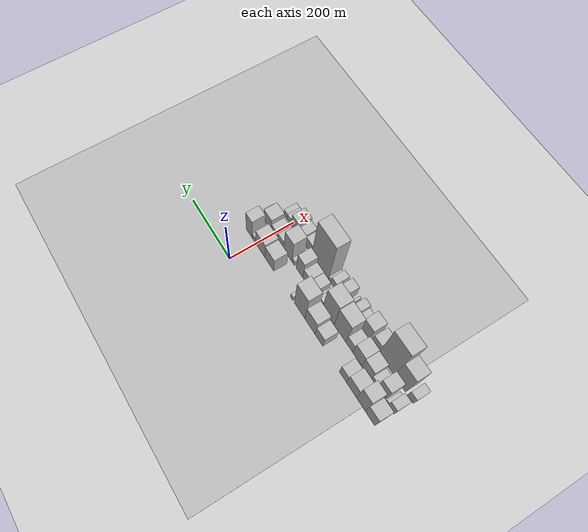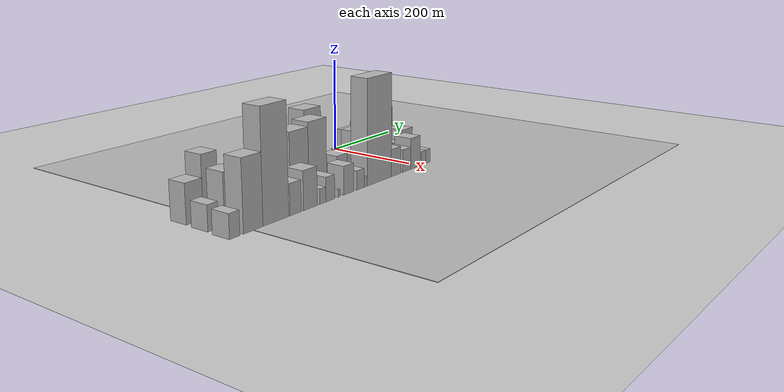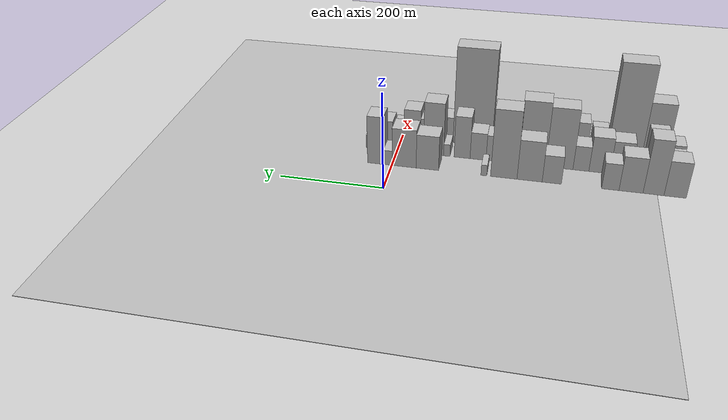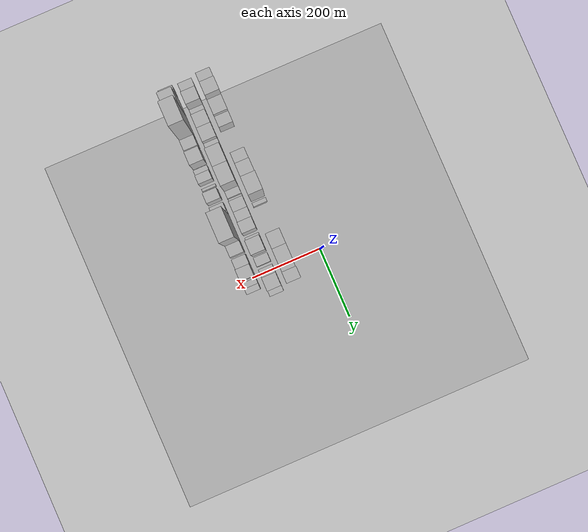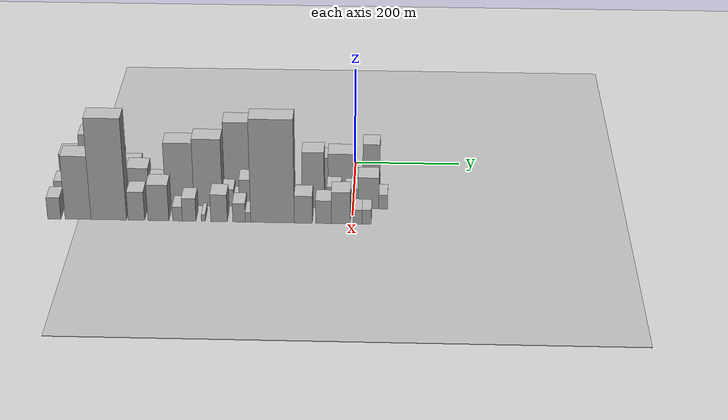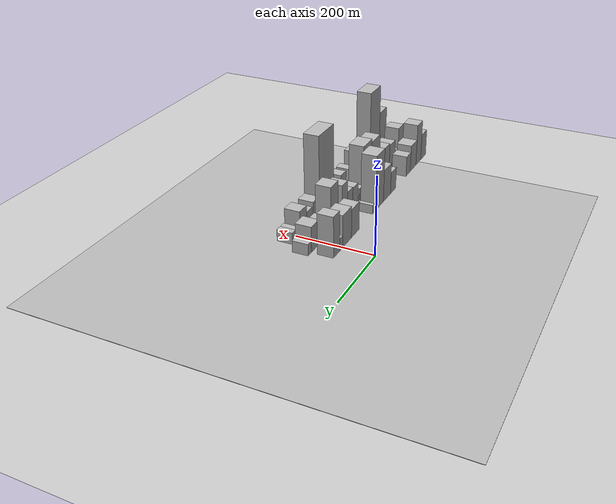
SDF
<sdf version="1.6">
 <world name="default">
  <include><name>ground_plane_1</name><uri>model://HANNAS_ground_plane</uri></include>
  <include>
   <name>ground_plane_2</name>
   <uri>model://HANNAS_ground_plane</uri>
   <pose>100 0 0  0 0 0</pose>
  </include>
  <model name="building_1">
   <static>1</static>
   <pose>100.0000 -531.3328 0 0.000000 0.000000 0.000000</pose>
   <link name="link">
    <pose>0 0 37.50 0 0 0</pose>
    <collision name="collision"><geometry><box><size>40.0000 39.3343 75.0000</size></box></geometry></collision>
    <visual name="visual">
     <cast_shadows>0</cast_shadows>
     <geometry><box><size>40.0000 39.3343 75.0000</size></box></geometry>
     <material>
      <script>
       <uri>model://HANNAS_wall/materials/scripts</uri>
       <uri>model://HANNAS_wall/materials/textures</uri>
       <name>vrc/HANNAS_wall</name>
      </script>
     </material>
    </visual>
   </link>
  </model>
  <model name="building_2">
   <static>1</static>
   <pose>100.0000 -492.9887 0 0.000000 0.000000 0.000000</pose>
   <link name="link">
    <pose>0 0 58.50 0 0 0</pose>
    <collision name="collision"><geometry><box><size>40.0000 37.3539 117.0000</size></box></geometry></collision>
    <visual name="visual">
     <cast_shadows>0</cast_shadows>
     <geometry><box><size>40.0000 37.3539 117.0000</size></box></geometry>
     <material>
      <script>
       <uri>model://HANNAS_wall/materials/scripts</uri>
       <uri>model://HANNAS_wall/materials/textures</uri>
       <name>vrc/HANNAS_wall</name>
      </script>
     </material>
    </visual>
   </link>
  </model>
  <model name="building_3">
   <static>1</static>
   <pose>100.0000 -452.7107 0 0.000000 0.000000 0.000000</pose>
   <link name="link">
    <pose>0 0 37.50 0 0 0</pose>
    <collision name="collision"><geometry><box><size>40.0000 43.2021 75.0000</size></box></geometry></collision>
    <visual name="visual">
     <cast_shadows>0</cast_shadows>
     <geometry><box><size>40.0000 43.2021 75.0000</size></box></geometry>
     <material>
      <script>
       <uri>model://HANNAS_wall/materials/scripts</uri>
       <uri>model://HANNAS_wall/materials/textures</uri>
       <name>vrc/HANNAS_wall</name>
      </script>
     </material>
    </visual>
   </link>
  </model>
  <model name="building_4">
   <static>1</static>
   <pose>100.0000 -415.3663 0 0.000000 0.000000 0.000000</pose>
   <link name="link">
    <pose>0 0 28.50 0 0 0</pose>
    <collision name="collision"><geometry><box><size>40.0000 31.4868 57.0000</size></box></geometry></collision>
    <visual name="visual">
     <cast_shadows>0</cast_shadows>
     <geometry><box><size>40.0000 31.4868 57.0000</size></box></geometry>
     <material>
      <script>
       <uri>model://HANNAS_wall/materials/scripts</uri>
       <uri>model://HANNAS_wall/materials/textures</uri>
       <name>vrc/HANNAS_wall</name>
      </script>
     </material>
    </visual>
   </link>
  </model>
  <model name="building_5">
   <static>1</static>
   <pose>100.0000 -307.8928 0 0.000000 0.000000 0.000000</pose>
   <link name="link">
    <pose>0 0 30.00 0 0 0</pose>
    <collision name="collision"><geometry><box><size>40.0000 35.8201 60.0000</size></box></geometry></collision>
    <visual name="visual">
     <cast_shadows>0</cast_shadows>
     <geometry><box><size>40.0000 35.8201 60.0000</size></box></geometry>
     <material>
      <script>
       <uri>model://HANNAS_wall/materials/scripts</uri>
       <uri>model://HANNAS_wall/materials/textures</uri>
       <name>vrc/HANNAS_wall</name>
      </script>
     </material>
    </visual>
   </link>
  </model>
  <model name="building_6">
   <static>1</static>
   <pose>100.0000 -266.3477 0 0.000000 0.000000 0.000000</pose>
   <link name="link">
    <pose>0 0 43.50 0 0 0</pose>
    <collision name="collision"><geometry><box><size>40.0000 47.2701 87.0000</size></box></geometry></collision>
    <visual name="visual">
     <cast_shadows>0</cast_shadows>
     <geometry><box><size>40.0000 47.2701 87.0000</size></box></geometry>
     <material>
      <script>
       <uri>model://HANNAS_wall/materials/scripts</uri>
       <uri>model://HANNAS_wall/materials/textures</uri>
       <name>vrc/HANNAS_wall</name>
      </script>
     </material>
    </visual>
   </link>
  </model>
  <model name="building_7">
   <static>1</static>
   <pose>100.0000 -217.5453 0 0.000000 0.000000 0.000000</pose>
   <link name="link">
    <pose>0 0 73.50 0 0 0</pose>
    <collision name="collision"><geometry><box><size>40.0000 50.3349 147.0000</size></box></geometry></collision>
    <visual name="visual">
     <cast_shadows>0</cast_shadows>
     <geometry><box><size>40.0000 50.3349 147.0000</size></box></geometry>
     <material>
      <script>
       <uri>model://HANNAS_wall/materials/scripts</uri>
       <uri>model://HANNAS_wall/materials/textures</uri>
       <name>vrc/HANNAS_wall</name>
      </script>
     </material>
    </visual>
   </link>
  </model>
  <model name="building_8">
   <static>1</static>
   <pose>100.0000 -179.6727 0 0.000000 0.000000 0.000000</pose>
   <link name="link">
    <pose>0 0 12.00 0 0 0</pose>
    <collision name="collision"><geometry><box><size>40.0000 11.4102 24.0000</size></box></geometry></collision>
    <visual name="visual">
     <cast_shadows>0</cast_shadows>
     <geometry><box><size>40.0000 11.4102 24.0000</size></box></geometry>
     <material>
      <script>
       <uri>model://HANNAS_wall/materials/scripts</uri>
       <uri>model://HANNAS_wall/materials/textures</uri>
       <name>vrc/HANNAS_wall</name>
      </script>
     </material>
    </visual>
   </link>
  </model>
  <model name="building_9">
   <static>1</static>
   <pose>100.0000 -69.9859 0 0.000000 0.000000 0.000000</pose>
   <link name="link">
    <pose>0 0 37.50 0 0 0</pose>
    <collision name="collision"><geometry><box><size>40.0000 43.9879 75.0000</size></box></geometry></collision>
    <visual name="visual">
     <cast_shadows>0</cast_shadows>
     <geometry><box><size>40.0000 43.9879 75.0000</size></box></geometry>
     <material>
      <script>
       <uri>model://HANNAS_wall/materials/scripts</uri>
       <uri>model://HANNAS_wall/materials/textures</uri>
       <name>vrc/HANNAS_wall</name>
      </script>
     </material>
    </visual>
   </link>
  </model>
  <model name="building_10">
   <static>1</static>
   <pose>100.0000 -24.0479 0 0.000000 0.000000 0.000000</pose>
   <link name="link">
    <pose>0 0 42.00 0 0 0</pose>
    <collision name="collision"><geometry><box><size>40.0000 47.8881 84.0000</size></box></geometry></collision>
    <visual name="visual">
     <cast_shadows>0</cast_shadows>
     <geometry><box><size>40.0000 47.8881 84.0000</size></box></geometry>
     <material>
      <script>
       <uri>model://HANNAS_wall/materials/scripts</uri>
       <uri>model://HANNAS_wall/materials/textures</uri>
       <name>vrc/HANNAS_wall</name>
      </script>
     </material>
    </visual>
   </link>
  </model>
  <model name="building_11">
   <static>1</static>
   <pose>100.0000 8.4492 0 0.000000 0.000000 0.000000</pose>
   <link name="link">
    <pose>0 0 16.50 0 0 0</pose>
    <collision name="collision"><geometry><box><size>40.0000 17.1060 33.0000</size></box></geometry></collision>
    <visual name="visual">
     <cast_shadows>0</cast_shadows>
     <geometry><box><size>40.0000 17.1060 33.0000</size></box></geometry>
     <material>
      <script>
       <uri>model://HANNAS_wall/materials/scripts</uri>
       <uri>model://HANNAS_wall/materials/textures</uri>
       <name>vrc/HANNAS_wall</name>
      </script>
     </material>
    </visual>
   </link>
  </model>
  <model name="building_12">
   <static>1</static>
   <pose>100.0000 32.9279 0 0.000000 0.000000 0.000000</pose>
   <link name="link">
    <pose>0 0 52.50 0 0 0</pose>
    <collision name="collision"><geometry><box><size>40.0000 31.8514 105.0000</size></box></geometry></collision>
    <visual name="visual">
     <cast_shadows>0</cast_shadows>
     <geometry><box><size>40.0000 31.8514 105.0000</size></box></geometry>
     <material>
      <script>
       <uri>model://HANNAS_wall/materials/scripts</uri>
       <uri>model://HANNAS_wall/materials/textures</uri>
       <name>vrc/HANNAS_wall</name>
      </script>
     </material>
    </visual>
   </link>
  </model>
  <model name="building_30">
   <static>1</static>
   <pose>155.0000 -540.3779 0 0.000000 0.000000 0.000000</pose>
   <link name="link">
    <pose>0 0 24.00 0 0 0</pose>
    <collision name="collision"><geometry><box><size>40.0000 25.2442 48.0000</size></box></geometry></collision>
    <visual name="visual">
     <cast_shadows>0</cast_shadows>
     <geometry><box><size>40.0000 25.2442 48.0000</size></box></geometry>
     <material>
      <script>
       <uri>model://HANNAS_wall/materials/scripts</uri>
       <uri>model://HANNAS_wall/materials/textures</uri>
       <name>vrc/HANNAS_wall</name>
      </script>
     </material>
    </visual>
   </link>
  </model>
  <model name="building_31">
   <static>1</static>
   <pose>155.0000 -522.5251 0 0.000000 0.000000 0.000000</pose>
   <link name="link">
    <pose>0 0 10.50 0 0 0</pose>
    <collision name="collision"><geometry><box><size>40.0000 10.4615 21.0000</size></box></geometry></collision>
    <visual name="visual">
     <cast_shadows>0</cast_shadows>
     <geometry><box><size>40.0000 10.4615 21.0000</size></box></geometry>
     <material>
      <script>
       <uri>model://HANNAS_wall/materials/scripts</uri>
       <uri>model://HANNAS_wall/materials/textures</uri>
       <name>vrc/HANNAS_wall</name>
      </script>
     </material>
    </visual>
   </link>
  </model>
  <model name="building_32">
   <static>1</static>
   <pose>155.0000 -496.5892 0 0.000000 0.000000 0.000000</pose>
   <link name="link">
    <pose>0 0 48.00 0 0 0</pose>
    <collision name="collision"><geometry><box><size>40.0000 35.4102 96.0000</size></box></geometry></collision>
    <visual name="visual">
     <cast_shadows>0</cast_shadows>
     <geometry><box><size>40.0000 35.4102 96.0000</size></box></geometry>
     <material>
      <script>
       <uri>model://HANNAS_wall/materials/scripts</uri>
       <uri>model://HANNAS_wall/materials/textures</uri>
       <name>vrc/HANNAS_wall</name>
      </script>
     </material>
    </visual>
   </link>
  </model>
  <model name="building_33">
   <static>1</static>
   <pose>155.0000 -467.4853 0 0.000000 0.000000 0.000000</pose>
   <link name="link">
    <pose>0 0 19.50 0 0 0</pose>
    <collision name="collision"><geometry><box><size>40.0000 22.7977 39.0000</size></box></geometry></collision>
    <visual name="visual">
     <cast_shadows>0</cast_shadows>
     <geometry><box><size>40.0000 22.7977 39.0000</size></box></geometry>
     <material>
      <script>
       <uri>model://HANNAS_wall/materials/scripts</uri>
       <uri>model://HANNAS_wall/materials/textures</uri>
       <name>vrc/HANNAS_wall</name>
      </script>
     </material>
    </visual>
   </link>
  </model>
  <model name="building_34">
   <static>1</static>
   <pose>155.0000 -436.3351 0 0.000000 0.000000 0.000000</pose>
   <link name="link">
    <pose>0 0 36.00 0 0 0</pose>
    <collision name="collision"><geometry><box><size>40.0000 39.5029 72.0000</size></box></geometry></collision>
    <visual name="visual">
     <cast_shadows>0</cast_shadows>
     <geometry><box><size>40.0000 39.5029 72.0000</size></box></geometry>
     <material>
      <script>
       <uri>model://HANNAS_wall/materials/scripts</uri>
       <uri>model://HANNAS_wall/materials/textures</uri>
       <name>vrc/HANNAS_wall</name>
      </script>
     </material>
    </visual>
   </link>
  </model>
  <model name="building_35">
   <static>1</static>
   <pose>155.0000 -396.7791 0 0.000000 0.000000 0.000000</pose>
   <link name="link">
    <pose>0 0 39.00 0 0 0</pose>
    <collision name="collision"><geometry><box><size>40.0000 39.6091 78.0000</size></box></geometry></collision>
    <visual name="visual">
     <cast_shadows>0</cast_shadows>
     <geometry><box><size>40.0000 39.6091 78.0000</size></box></geometry>
     <material>
      <script>
       <uri>model://HANNAS_wall/materials/scripts</uri>
       <uri>model://HANNAS_wall/materials/textures</uri>
       <name>vrc/HANNAS_wall</name>
      </script>
     </material>
    </visual>
   </link>
  </model>
  <model name="building_36">
   <static>1</static>
   <pose>155.0000 -361.8602 0 0.000000 0.000000 0.000000</pose>
   <link name="link">
    <pose>0 0 27.00 0 0 0</pose>
    <collision name="collision"><geometry><box><size>40.0000 30.2285 54.0000</size></box></geometry></collision>
    <visual name="visual">
     <cast_shadows>0</cast_shadows>
     <geometry><box><size>40.0000 30.2285 54.0000</size></box></geometry>
     <material>
      <script>
       <uri>model://HANNAS_wall/materials/scripts</uri>
       <uri>model://HANNAS_wall/materials/textures</uri>
       <name>vrc/HANNAS_wall</name>
      </script>
     </material>
    </visual>
   </link>
  </model>
  <model name="building_37">
   <static>1</static>
   <pose>155.0000 -320.4839 0 0.000000 0.000000 0.000000</pose>
   <link name="link">
    <pose>0 0 66.00 0 0 0</pose>
    <collision name="collision"><geometry><box><size>40.0000 52.5241 132.0000</size></box></geometry></collision>
    <visual name="visual">
     <cast_shadows>0</cast_shadows>
     <geometry><box><size>40.0000 52.5241 132.0000</size></box></geometry>
     <material>
      <script>
       <uri>model://HANNAS_wall/materials/scripts</uri>
       <uri>model://HANNAS_wall/materials/textures</uri>
       <name>vrc/HANNAS_wall</name>
      </script>
     </material>
    </visual>
   </link>
  </model>
  <model name="building_38">
   <static>1</static>
   <pose>155.0000 -267.8092 0 0.000000 0.000000 0.000000</pose>
   <link name="link">
    <pose>0 0 70.50 0 0 0</pose>
    <collision name="collision"><geometry><box><size>40.0000 52.8253 141.0000</size></box></geometry></collision>
    <visual name="visual">
     <cast_shadows>0</cast_shadows>
     <geometry><box><size>40.0000 52.8253 141.0000</size></box></geometry>
     <material>
      <script>
       <uri>model://HANNAS_wall/materials/scripts</uri>
       <uri>model://HANNAS_wall/materials/textures</uri>
       <name>vrc/HANNAS_wall</name>
      </script>
     </material>
    </visual>
   </link>
  </model>
  <model name="building_39">
   <static>1</static>
   <pose>155.0000 -230.8338 0 0.000000 0.000000 0.000000</pose>
   <link name="link">
    <pose>0 0 18.00 0 0 0</pose>
    <collision name="collision"><geometry><box><size>40.0000 21.1254 36.0000</size></box></geometry></collision>
    <visual name="visual">
     <cast_shadows>0</cast_shadows>
     <geometry><box><size>40.0000 21.1254 36.0000</size></box></geometry>
     <material>
      <script>
       <uri>model://HANNAS_wall/materials/scripts</uri>
       <uri>model://HANNAS_wall/materials/textures</uri>
       <name>vrc/HANNAS_wall</name>
      </script>
     </material>
    </visual>
   </link>
  </model>
  <model name="building_40">
   <static>1</static>
   <pose>155.0000 -215.2155 0 0.000000 0.000000 0.000000</pose>
   <link name="link">
    <pose>0 0 10.50 0 0 0</pose>
    <collision name="collision"><geometry><box><size>40.0000 10.1113 21.0000</size></box></geometry></collision>
    <visual name="visual">
     <cast_shadows>0</cast_shadows>
     <geometry><box><size>40.0000 10.1113 21.0000</size></box></geometry>
     <material>
      <script>
       <uri>model://HANNAS_wall/materials/scripts</uri>
       <uri>model://HANNAS_wall/materials/textures</uri>
       <name>vrc/HANNAS_wall</name>
      </script>
     </material>
    </visual>
   </link>
  </model>
  <model name="building_41">
   <static>1</static>
   <pose>155.0000 -194.1886 0 0.000000 0.000000 0.000000</pose>
   <link name="link">
    <pose>0 0 28.50 0 0 0</pose>
    <collision name="collision"><geometry><box><size>40.0000 31.9423 57.0000</size></box></geometry></collision>
    <visual name="visual">
     <cast_shadows>0</cast_shadows>
     <geometry><box><size>40.0000 31.9423 57.0000</size></box></geometry>
     <material>
      <script>
       <uri>model://HANNAS_wall/materials/scripts</uri>
       <uri>model://HANNAS_wall/materials/textures</uri>
       <name>vrc/HANNAS_wall</name>
      </script>
     </material>
    </visual>
   </link>
  </model>
  <model name="building_42">
   <static>1</static>
   <pose>155.0000 -162.4178 0 0.000000 0.000000 0.000000</pose>
   <link name="link">
    <pose>0 0 30.00 0 0 0</pose>
    <collision name="collision"><geometry><box><size>40.0000 31.5993 60.0000</size></box></geometry></collision>
    <visual name="visual">
     <cast_shadows>0</cast_shadows>
     <geometry><box><size>40.0000 31.5993 60.0000</size></box></geometry>
     <material>
      <script>
       <uri>model://HANNAS_wall/materials/scripts</uri>
       <uri>model://HANNAS_wall/materials/textures</uri>
       <name>vrc/HANNAS_wall</name>
      </script>
     </material>
    </visual>
   </link>
  </model>
  <model name="building_43">
   <static>1</static>
   <pose>155.0000 -130.6023 0 0.000000 0.000000 0.000000</pose>
   <link name="link">
    <pose>0 0 46.50 0 0 0</pose>
    <collision name="collision"><geometry><box><size>40.0000 32.0316 93.0000</size></box></geometry></collision>
    <visual name="visual">
     <cast_shadows>0</cast_shadows>
     <geometry><box><size>40.0000 32.0316 93.0000</size></box></geometry>
     <material>
      <script>
       <uri>model://HANNAS_wall/materials/scripts</uri>
       <uri>model://HANNAS_wall/materials/textures</uri>
       <name>vrc/HANNAS_wall</name>
      </script>
     </material>
    </visual>
   </link>
  </model>
  <model name="building_44">
   <static>1</static>
   <pose>155.0000 -100.1171 0 0.000000 0.000000 0.000000</pose>
   <link name="link">
    <pose>0 0 13.50 0 0 0</pose>
    <collision name="collision"><geometry><box><size>40.0000 12.9390 27.0000</size></box></geometry></collision>
    <visual name="visual">
     <cast_shadows>0</cast_shadows>
     <geometry><box><size>40.0000 12.9390 27.0000</size></box></geometry>
     <material>
      <script>
       <uri>model://HANNAS_wall/materials/scripts</uri>
       <uri>model://HANNAS_wall/materials/textures</uri>
       <name>vrc/HANNAS_wall</name>
      </script>
     </material>
    </visual>
   </link>
  </model>
  <model name="building_45">
   <static>1</static>
   <pose>155.0000 -73.3386 0 0.000000 0.000000 0.000000</pose>
   <link name="link">
    <pose>0 0 58.50 0 0 0</pose>
    <collision name="collision"><geometry><box><size>40.0000 40.6179 117.0000</size></box></geometry></collision>
    <visual name="visual">
     <cast_shadows>0</cast_shadows>
     <geometry><box><size>40.0000 40.6179 117.0000</size></box></geometry>
     <material>
      <script>
       <uri>model://HANNAS_wall/materials/scripts</uri>
       <uri>model://HANNAS_wall/materials/textures</uri>
       <name>vrc/HANNAS_wall</name>
      </script>
     </material>
    </visual>
   </link>
  </model>
  <model name="building_46">
   <static>1</static>
   <pose>155.0000 -34.9609 0 0.000000 0.000000 0.000000</pose>
   <link name="link">
    <pose>0 0 22.50 0 0 0</pose>
    <collision name="collision"><geometry><box><size>40.0000 26.1375 45.0000</size></box></geometry></collision>
    <visual name="visual">
     <cast_shadows>0</cast_shadows>
     <geometry><box><size>40.0000 26.1375 45.0000</size></box></geometry>
     <material>
      <script>
       <uri>model://HANNAS_wall/materials/scripts</uri>
       <uri>model://HANNAS_wall/materials/textures</uri>
       <name>vrc/HANNAS_wall</name>
      </script>
     </material>
    </visual>
   </link>
  </model>
  <model name="building_47">
   <static>1</static>
   <pose>155.0000 -2.0837 0 0.000000 0.000000 0.000000</pose>
   <link name="link">
    <pose>0 0 21.00 0 0 0</pose>
    <collision name="collision"><geometry><box><size>40.0000 23.6168 42.0000</size></box></geometry></collision>
    <visual name="visual">
     <cast_shadows>0</cast_shadows>
     <geometry><box><size>40.0000 23.6168 42.0000</size></box></geometry>
     <material>
      <script>
       <uri>model://HANNAS_wall/materials/scripts</uri>
       <uri>model://HANNAS_wall/materials/textures</uri>
       <name>vrc/HANNAS_wall</name>
      </script>
     </material>
    </visual>
   </link>
  </model>
  <model name="building_48">
   <static>1</static>
   <pose>155.0000 28.8316 0 0.000000 0.000000 0.000000</pose>
   <link name="link">
    <pose>0 0 33.00 0 0 0</pose>
    <collision name="collision"><geometry><box><size>40.0000 38.2137 66.0000</size></box></geometry></collision>
    <visual name="visual">
     <cast_shadows>0</cast_shadows>
     <geometry><box><size>40.0000 38.2137 66.0000</size></box></geometry>
     <material>
      <script>
       <uri>model://HANNAS_wall/materials/scripts</uri>
       <uri>model://HANNAS_wall/materials/textures</uri>
       <name>vrc/HANNAS_wall</name>
      </script>
     </material>
    </visual>
   </link>
  </model>
  <model name="building_49">
   <static>1</static>
   <pose>155.0000 56.1153 0 0.000000 0.000000 0.000000</pose>
   <link name="link">
    <pose>0 0 15.00 0 0 0</pose>
    <collision name="collision"><geometry><box><size>40.0000 16.3538 30.0000</size></box></geometry></collision>
    <visual name="visual">
     <cast_shadows>0</cast_shadows>
     <geometry><box><size>40.0000 16.3538 30.0000</size></box></geometry>
     <material>
      <script>
       <uri>model://HANNAS_wall/materials/scripts</uri>
       <uri>model://HANNAS_wall/materials/textures</uri>
       <name>vrc/HANNAS_wall</name>
      </script>
     </material>
    </visual>
   </link>
  </model>
  <model name="building_68">
   <static>1</static>
   <pose>210.0000 -544.8657 0 0.000000 0.000000 0.000000</pose>
   <link name="link">
    <pose>0 0 22.50 0 0 0</pose>
    <collision name="collision"><geometry><box><size>40.0000 24.2685 45.0000</size></box></geometry></collision>
    <visual name="visual">
     <cast_shadows>0</cast_shadows>
     <geometry><box><size>40.0000 24.2685 45.0000</size></box></geometry>
     <material>
      <script>
       <uri>model://HANNAS_wall/materials/scripts</uri>
       <uri>model://HANNAS_wall/materials/textures</uri>
       <name>vrc/HANNAS_wall</name>
      </script>
     </material>
    </visual>
   </link>
  </model>
  <model name="building_69">
   <static>1</static>
   <pose>210.0000 -501.0740 0 0.000000 0.000000 0.000000</pose>
   <link name="link">
    <pose>0 0 66.00 0 0 0</pose>
    <collision name="collision"><geometry><box><size>40.0000 47.3149 132.0000</size></box></geometry></collision>
    <visual name="visual">
     <cast_shadows>0</cast_shadows>
     <geometry><box><size>40.0000 47.3149 132.0000</size></box></geometry>
     <material>
      <script>
       <uri>model://HANNAS_wall/materials/scripts</uri>
       <uri>model://HANNAS_wall/materials/textures</uri>
       <name>vrc/HANNAS_wall</name>
      </script>
     </material>
    </visual>
   </link>
  </model>
  <model name="building_70">
   <static>1</static>
   <pose>210.0000 -444.7806 0 0.000000 0.000000 0.000000</pose>
   <link name="link">
    <pose>0 0 105.00 0 0 0</pose>
    <collision name="collision"><geometry><box><size>40.0000 65.2720 210.0000</size></box></geometry></collision>
    <visual name="visual">
     <cast_shadows>0</cast_shadows>
     <geometry><box><size>40.0000 65.2720 210.0000</size></box></geometry>
     <material>
      <script>
       <uri>model://HANNAS_wall/materials/scripts</uri>
       <uri>model://HANNAS_wall/materials/textures</uri>
       <name>vrc/HANNAS_wall</name>
      </script>
     </material>
    </visual>
   </link>
  </model>
  <model name="building_71">
   <static>1</static>
   <pose>210.0000 -394.0190 0 0.000000 0.000000 0.000000</pose>
   <link name="link">
    <pose>0 0 30.00 0 0 0</pose>
    <collision name="collision"><geometry><box><size>40.0000 30.2511 60.0000</size></box></geometry></collision>
    <visual name="visual">
     <cast_shadows>0</cast_shadows>
     <geometry><box><size>40.0000 30.2511 60.0000</size></box></geometry>
     <material>
      <script>
       <uri>model://HANNAS_wall/materials/scripts</uri>
       <uri>model://HANNAS_wall/materials/textures</uri>
       <name>vrc/HANNAS_wall</name>
      </script>
     </material>
    </visual>
   </link>
  </model>
  <model name="building_72">
   <static>1</static>
   <pose>210.0000 -353.7293 0 0.000000 0.000000 0.000000</pose>
   <link name="link">
    <pose>0 0 37.50 0 0 0</pose>
    <collision name="collision"><geometry><box><size>40.0000 38.3283 75.0000</size></box></geometry></collision>
    <visual name="visual">
     <cast_shadows>0</cast_shadows>
     <geometry><box><size>40.0000 38.3283 75.0000</size></box></geometry>
     <material>
      <script>
       <uri>model://HANNAS_wall/materials/scripts</uri>
       <uri>model://HANNAS_wall/materials/textures</uri>
       <name>vrc/HANNAS_wall</name>
      </script>
     </material>
    </visual>
   </link>
  </model>
  <model name="building_73">
   <static>1</static>
   <pose>210.0000 -318.8032 0 0.000000 0.000000 0.000000</pose>
   <link name="link">
    <pose>0 0 15.00 0 0 0</pose>
    <collision name="collision"><geometry><box><size>40.0000 17.5239 30.0000</size></box></geometry></collision>
    <visual name="visual">
     <cast_shadows>0</cast_shadows>
     <geometry><box><size>40.0000 17.5239 30.0000</size></box></geometry>
     <material>
      <script>
       <uri>model://HANNAS_wall/materials/scripts</uri>
       <uri>model://HANNAS_wall/materials/textures</uri>
       <name>vrc/HANNAS_wall</name>
      </script>
     </material>
    </visual>
   </link>
  </model>
  <model name="building_74">
   <static>1</static>
   <pose>210.0000 -297.4498 0 0.000000 0.000000 0.000000</pose>
   <link name="link">
    <pose>0 0 24.00 0 0 0</pose>
    <collision name="collision"><geometry><box><size>40.0000 25.1829 48.0000</size></box></geometry></collision>
    <visual name="visual">
     <cast_shadows>0</cast_shadows>
     <geometry><box><size>40.0000 25.1829 48.0000</size></box></geometry>
     <material>
      <script>
       <uri>model://HANNAS_wall/materials/scripts</uri>
       <uri>model://HANNAS_wall/materials/textures</uri>
       <name>vrc/HANNAS_wall</name>
      </script>
     </material>
    </visual>
   </link>
  </model>
  <model name="building_75">
   <static>1</static>
   <pose>210.0000 -271.3287 0 0.000000 0.000000 0.000000</pose>
   <link name="link">
    <pose>0 0 7.50 0 0 0</pose>
    <collision name="collision"><geometry><box><size>40.0000 7.0594 15.0000</size></box></geometry></collision>
    <visual name="visual">
     <cast_shadows>0</cast_shadows>
     <geometry><box><size>40.0000 7.0594 15.0000</size></box></geometry>
     <material>
      <script>
       <uri>model://HANNAS_wall/materials/scripts</uri>
       <uri>model://HANNAS_wall/materials/textures</uri>
       <name>vrc/HANNAS_wall</name>
      </script>
     </material>
    </visual>
   </link>
  </model>
  <model name="building_76">
   <static>1</static>
   <pose>210.0000 -242.6628 0 0.000000 0.000000 0.000000</pose>
   <link name="link">
    <pose>0 0 28.50 0 0 0</pose>
    <collision name="collision"><geometry><box><size>40.0000 30.2723 57.0000</size></box></geometry></collision>
    <visual name="visual">
     <cast_shadows>0</cast_shadows>
     <geometry><box><size>40.0000 30.2723 57.0000</size></box></geometry>
     <material>
      <script>
       <uri>model://HANNAS_wall/materials/scripts</uri>
       <uri>model://HANNAS_wall/materials/textures</uri>
       <name>vrc/HANNAS_wall</name>
      </script>
     </material>
    </visual>
   </link>
  </model>
  <model name="building_77">
   <static>1</static>
   <pose>210.0000 -206.0627 0 0.000000 0.000000 0.000000</pose>
   <link name="link">
    <pose>0 0 19.50 0 0 0</pose>
    <collision name="collision"><geometry><box><size>40.0000 22.9280 39.0000</size></box></geometry></collision>
    <visual name="visual">
     <cast_shadows>0</cast_shadows>
     <geometry><box><size>40.0000 22.9280 39.0000</size></box></geometry>
     <material>
      <script>
       <uri>model://HANNAS_wall/materials/scripts</uri>
       <uri>model://HANNAS_wall/materials/textures</uri>
       <name>vrc/HANNAS_wall</name>
      </script>
     </material>
    </visual>
   </link>
  </model>
  <model name="building_78">
   <static>1</static>
   <pose>210.0000 -189.7098 0 0.000000 0.000000 0.000000</pose>
   <link name="link">
    <pose>0 0 10.50 0 0 0</pose>
    <collision name="collision"><geometry><box><size>40.0000 9.7778 21.0000</size></box></geometry></collision>
    <visual name="visual">
     <cast_shadows>0</cast_shadows>
     <geometry><box><size>40.0000 9.7778 21.0000</size></box></geometry>
     <material>
      <script>
       <uri>model://HANNAS_wall/materials/scripts</uri>
       <uri>model://HANNAS_wall/materials/textures</uri>
       <name>vrc/HANNAS_wall</name>
      </script>
     </material>
    </visual>
   </link>
  </model>
  <model name="building_79">
   <static>1</static>
   <pose>210.0000 -144.9525 0 0.000000 0.000000 0.000000</pose>
   <link name="link">
    <pose>0 0 106.50 0 0 0</pose>
    <collision name="collision"><geometry><box><size>40.0000 79.7368 213.0000</size></box></geometry></collision>
    <visual name="visual">
     <cast_shadows>0</cast_shadows>
     <geometry><box><size>40.0000 79.7368 213.0000</size></box></geometry>
     <material>
      <script>
       <uri>model://HANNAS_wall/materials/scripts</uri>
       <uri>model://HANNAS_wall/materials/textures</uri>
       <name>vrc/HANNAS_wall</name>
      </script>
     </material>
    </visual>
   </link>
  </model>
  <model name="building_80">
   <static>1</static>
   <pose>210.0000 -88.7416 0 0.000000 0.000000 0.000000</pose>
   <link name="link">
    <pose>0 0 28.50 0 0 0</pose>
    <collision name="collision"><geometry><box><size>40.0000 32.6850 57.0000</size></box></geometry></collision>
    <visual name="visual">
     <cast_shadows>0</cast_shadows>
     <geometry><box><size>40.0000 32.6850 57.0000</size></box></geometry>
     <material>
      <script>
       <uri>model://HANNAS_wall/materials/scripts</uri>
       <uri>model://HANNAS_wall/materials/textures</uri>
       <name>vrc/HANNAS_wall</name>
      </script>
     </material>
    </visual>
   </link>
  </model>
  <model name="building_81">
   <static>1</static>
   <pose>210.0000 -52.0111 0 0.000000 0.000000 0.000000</pose>
   <link name="link">
    <pose>0 0 24.00 0 0 0</pose>
    <collision name="collision"><geometry><box><size>40.0000 28.7760 48.0000</size></box></geometry></collision>
    <visual name="visual">
     <cast_shadows>0</cast_shadows>
     <geometry><box><size>40.0000 28.7760 48.0000</size></box></geometry>
     <material>
      <script>
       <uri>model://HANNAS_wall/materials/scripts</uri>
       <uri>model://HANNAS_wall/materials/textures</uri>
       <name>vrc/HANNAS_wall</name>
      </script>
     </material>
    </visual>
   </link>
  </model>
  <model name="building_82">
   <static>1</static>
   <pose>210.0000 -20.4178 0 0.000000 0.000000 0.000000</pose>
   <link name="link">
    <pose>0 0 33.00 0 0 0</pose>
    <collision name="collision"><geometry><box><size>40.0000 34.4106 66.0000</size></box></geometry></collision>
    <visual name="visual">
     <cast_shadows>0</cast_shadows>
     <geometry><box><size>40.0000 34.4106 66.0000</size></box></geometry>
     <material>
      <script>
       <uri>model://HANNAS_wall/materials/scripts</uri>
       <uri>model://HANNAS_wall/materials/textures</uri>
       <name>vrc/HANNAS_wall</name>
      </script>
     </material>
    </visual>
   </link>
  </model>
  <model name="building_83">
   <static>1</static>
   <pose>210.0000 9.9896 0 0.000000 0.000000 0.000000</pose>
   <link name="link">
    <pose>0 0 15.00 0 0 0</pose>
    <collision name="collision"><geometry><box><size>40.0000 16.4042 30.0000</size></box></geometry></collision>
    <visual name="visual">
     <cast_shadows>0</cast_shadows>
     <geometry><box><size>40.0000 16.4042 30.0000</size></box></geometry>
     <material>
      <script>
       <uri>model://HANNAS_wall/materials/scripts</uri>
       <uri>model://HANNAS_wall/materials/textures</uri>
       <name>vrc/HANNAS_wall</name>
      </script>
     </material>
    </visual>
   </link>
  </model>
  <model name="building_84">
   <static>1</static>
   <pose>210.0000 26.6435 0 0.000000 0.000000 0.000000</pose>
   <link name="link">
    <pose>0 0 15.00 0 0 0</pose>
    <collision name="collision"><geometry><box><size>40.0000 16.9037 30.0000</size></box></geometry></collision>
    <visual name="visual">
     <cast_shadows>0</cast_shadows>
     <geometry><box><size>40.0000 16.9037 30.0000</size></box></geometry>
     <material>
      <script>
       <uri>model://HANNAS_wall/materials/scripts</uri>
       <uri>model://HANNAS_wall/materials/textures</uri>
       <name>vrc/HANNAS_wall</name>
      </script>
     </material>
    </visual>
   </link>
  </model>
 </world>
</sdf>
